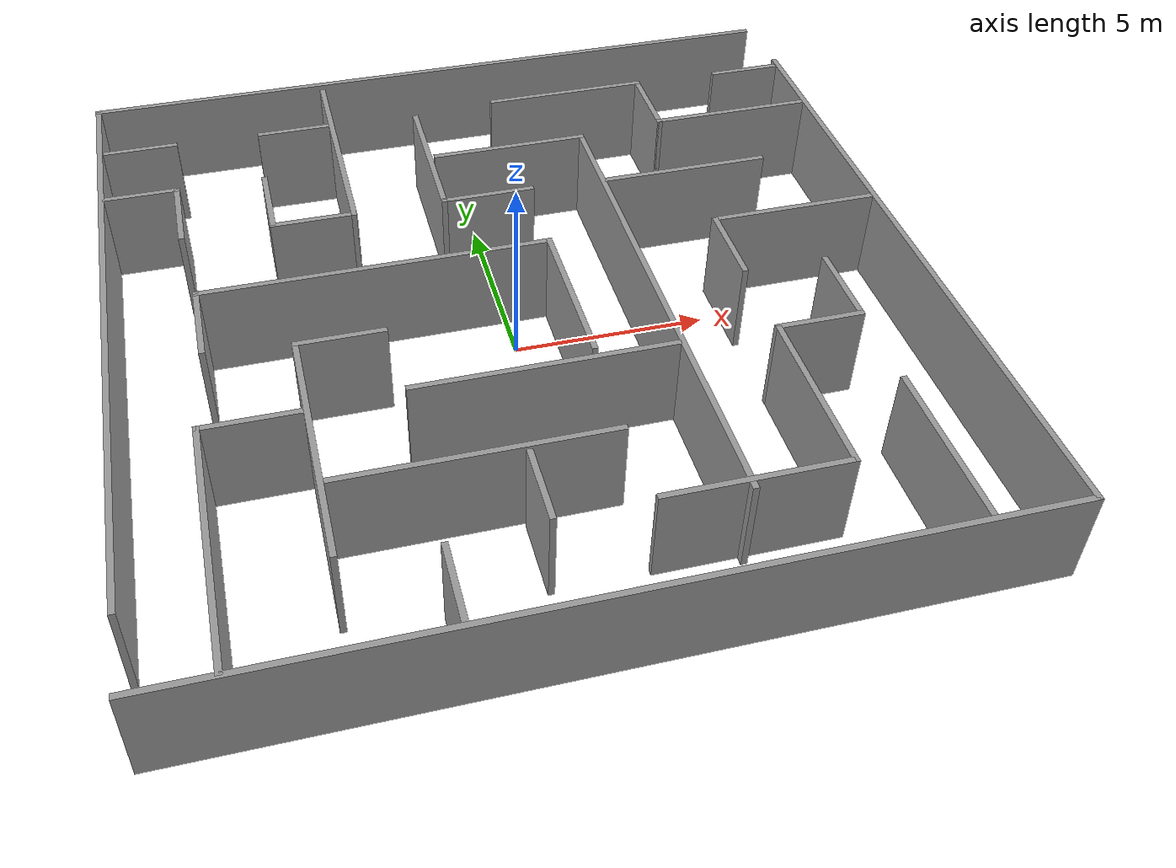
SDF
<?xml version='1.0'?>
<sdf version='1.6'>
  <model name='migong'>
    <pose frame=''>0.063661 0.067032 0 0 -0 0</pose>
    <link name='Wall_1'>
      <collision name='Wall_1_Collision'>
        <geometry>
          <box>
            <size>18 0.15 2.5</size>
          </box>
        </geometry>
        <pose frame=''>0 0 1.25 0 -0 0</pose>
      </collision>
      <visual name='Wall_1_Visual'>
        <pose frame=''>0 0 1.25 0 -0 0</pose>
        <geometry>
          <box>
            <size>18 0.15 2.5</size>
          </box>
        </geometry>
        <material>
          <script>
            <uri>file://media/materials/scripts/gazebo.material</uri>
            <name>Gazebo/Grey</name>
          </script>
          <ambient>1 1 1 1</ambient>
        </material>
      </visual>
      <pose frame=''>9.925 -0.95549 0 0 0 -1.5708</pose>
    </link>
    <link name='Wall_10'>
      <collision name='Wall_10_Collision'>
        <geometry>
          <box>
            <size>18 0.15 2.5</size>
          </box>
        </geometry>
        <pose frame=''>0 0 1.25 0 -0 0</pose>
      </collision>
      <visual name='Wall_10_Visual'>
        <pose frame=''>0 0 1.25 0 -0 0</pose>
        <geometry>
          <box>
            <size>18 0.15 2.5</size>
          </box>
        </geometry>
        <material>
          <script>
            <uri>file://media/materials/scripts/gazebo.material</uri>
            <name>Gazebo/Grey</name>
          </script>
          <ambient>1 1 1 1</ambient>
        </material>
      </visual>
      <pose frame=''>-9.92272 0.95549 0 0 -0 1.5708</pose>
    </link>
    <link name='Wall_11'>
      <collision name='Wall_11_Collision'>
        <geometry>
          <box>
            <size>19.75 0.15 2.5</size>
          </box>
        </geometry>
        <pose frame=''>0 0 1.25 0 -0 0</pose>
      </collision>
      <visual name='Wall_11_Visual'>
        <pose frame=''>0 0 1.25 0 -0 0</pose>
        <geometry>
          <box>
            <size>19.75 0.15 2.5</size>
          </box>
        </geometry>
        <material>
          <script>
            <uri>file://media/materials/scripts/gazebo.material</uri>
            <name>Gazebo/Grey</name>
          </script>
          <ambient>1 1 1 1</ambient>
        </material>
      </visual>
      <pose frame=''>-0.122722 9.88049 0 0 -0 0</pose>
    </link>
    <link name='Wall_13'>
      <collision name='Wall_13_Collision'>
        <geometry>
          <box>
            <size>2 0.15 2.5</size>
          </box>
        </geometry>
        <pose frame=''>0 0 1.25 0 -0 0</pose>
      </collision>
      <visual name='Wall_13_Visual'>
        <pose frame=''>0 0 1.25 0 -0 0</pose>
        <geometry>
          <box>
            <size>2 0.15 2.5</size>
          </box>
        </geometry>
        <material>
          <script>
            <uri>file://media/materials/scripts/gazebo.material</uri>
            <name>Gazebo/Grey</name>
          </script>
          <ambient>1 1 1 1</ambient>
        </material>
      </visual>
      <pose frame=''>-8.83566 7.72225 0 0 -0 0</pose>
    </link>
    <link name='Wall_15'>
      <collision name='Wall_15_Collision'>
        <geometry>
          <box>
            <size>2 0.15 2.5</size>
          </box>
        </geometry>
        <pose frame=''>0 0 1.25 0 -0 0</pose>
      </collision>
      <visual name='Wall_15_Visual'>
        <pose frame=''>0 0 1.25 0 -0 0</pose>
        <geometry>
          <box>
            <size>2 0.15 2.5</size>
          </box>
        </geometry>
        <material>
          <script>
            <uri>file://media/materials/scripts/gazebo.material</uri>
            <name>Gazebo/Grey</name>
          </script>
          <ambient>1 1 1 1</ambient>
        </material>
      </visual>
      <pose frame=''>-4.61421 7.66949 0 0 -0 0</pose>
    </link>
    <link name='Wall_19'>
      <collision name='Wall_19_Collision'>
        <geometry>
          <box>
            <size>2 0.15 2.5</size>
          </box>
        </geometry>
        <pose frame=''>0 0 1.25 0 -0 0</pose>
      </collision>
      <visual name='Wall_19_Visual'>
        <pose frame=''>0 0 1.25 0 -0 0</pose>
        <geometry>
          <box>
            <size>2 0.15 2.5</size>
          </box>
        </geometry>
        <material>
          <script>
            <uri>file://media/materials/scripts/gazebo.material</uri>
            <name>Gazebo/Grey</name>
          </script>
          <ambient>1 1 1 1</ambient>
        </material>
      </visual>
      <pose frame=''>-8.88842 5.55876 0 0 -0 0</pose>
    </link>
    <link name='Wall_2'>
      <collision name='Wall_2_Collision'>
        <geometry>
          <box>
            <size>20 0.15 2.5</size>
          </box>
        </geometry>
        <pose frame=''>0 0 1.25 0 -0 0</pose>
      </collision>
      <visual name='Wall_2_Visual'>
        <pose frame=''>0 0 1.25 0 -0 0</pose>
        <geometry>
          <box>
            <size>20 0.15 2.5</size>
          </box>
        </geometry>
        <material>
          <script>
            <uri>file://media/materials/scripts/gazebo.material</uri>
            <name>Gazebo/Grey</name>
          </script>
          <ambient>1 1 1 1</ambient>
        </material>
      </visual>
      <pose frame=''>0 -9.88049 0 0 -0 3.14159</pose>
    </link>
    <link name='Wall_20'>
      <collision name='Wall_20_Collision'>
        <geometry>
          <box>
            <size>2.25 0.15 2.5</size>
          </box>
        </geometry>
        <pose frame=''>0 0 1.25 0 -0 0</pose>
      </collision>
      <visual name='Wall_20_Visual'>
        <pose frame=''>0 0 1.25 0 -0 0</pose>
        <geometry>
          <box>
            <size>2.25 0.15 2.5</size>
          </box>
        </geometry>
        <material>
          <script>
            <uri>file://media/materials/scripts/gazebo.material</uri>
            <name>Gazebo/Grey</name>
          </script>
          <ambient>1 1 1 1</ambient>
        </material>
      </visual>
      <pose frame=''>-7.96342 4.50876 0 0 0 -1.5708</pose>
    </link>
    <link name='Wall_26'>
      <collision name='Wall_26_Collision'>
        <geometry>
          <box>
            <size>2.25 0.15 2.5</size>
          </box>
        </geometry>
        <pose frame=''>0 0 1.25 0 -0 0</pose>
      </collision>
      <visual name='Wall_26_Visual'>
        <pose frame=''>0 0 1.25 0 -0 0</pose>
        <geometry>
          <box>
            <size>2.25 0.15 2.5</size>
          </box>
        </geometry>
        <material>
          <script>
            <uri>file://media/materials/scripts/gazebo.material</uri>
            <name>Gazebo/Grey</name>
          </script>
          <ambient>1 1 1 1</ambient>
        </material>
      </visual>
      <pose frame=''>-5.64474 4.45599 0 0 0 -1.5708</pose>
    </link>
    <link name='Wall_27'>
      <collision name='Wall_27_Collision'>
        <geometry>
          <box>
            <size>2.25 0.15 2.5</size>
          </box>
        </geometry>
        <pose frame=''>0 0 1.25 0 -0 0</pose>
      </collision>
      <visual name='Wall_27_Visual'>
        <pose frame=''>0 0 1.25 0 -0 0</pose>
        <geometry>
          <box>
            <size>2.25 0.15 2.5</size>
          </box>
        </geometry>
        <material>
          <script>
            <uri>file://media/materials/scripts/gazebo.material</uri>
            <name>Gazebo/Grey</name>
          </script>
          <ambient>1 1 1 1</ambient>
        </material>
      </visual>
      <pose frame=''>-4.59474 3.40599 0 0 -0 0</pose>
    </link>
    <link name='Wall_28'>
      <collision name='Wall_28_Collision'>
        <geometry>
          <box>
            <size>6.25 0.15 2.5</size>
          </box>
        </geometry>
        <pose frame=''>0 0 1.25 0 -0 0</pose>
      </collision>
      <visual name='Wall_28_Visual'>
        <pose frame=''>0 0 1.25 0 -0 0</pose>
        <geometry>
          <box>
            <size>6.25 0.15 2.5</size>
          </box>
        </geometry>
        <material>
          <script>
            <uri>file://media/materials/scripts/gazebo.material</uri>
            <name>Gazebo/Grey</name>
          </script>
          <ambient>1 1 1 1</ambient>
        </material>
      </visual>
      <pose frame=''>-3.54474 6.45599 0 0 -0 1.5708</pose>
    </link>
    <link name='Wall_30'>
      <collision name='Wall_30_Collision'>
        <geometry>
          <box>
            <size>2 0.15 2.5</size>
          </box>
        </geometry>
        <pose frame=''>0 0 1.25 0 -0 0</pose>
      </collision>
      <visual name='Wall_30_Visual'>
        <pose frame=''>0 0 1.25 0 -0 0</pose>
        <geometry>
          <box>
            <size>2 0.15 2.5</size>
          </box>
        </geometry>
        <material>
          <script>
            <uri>file://media/materials/scripts/gazebo.material</uri>
            <name>Gazebo/Grey</name>
          </script>
          <ambient>1 1 1 1</ambient>
        </material>
      </visual>
      <pose frame=''>8.84167 7.72225 0 0 -0 0</pose>
    </link>
    <link name='Wall_32'>
      <collision name='Wall_32_Collision'>
        <geometry>
          <box>
            <size>4.5 0.15 2.5</size>
          </box>
        </geometry>
        <pose frame=''>0 0 1.25 0 -0 0</pose>
      </collision>
      <visual name='Wall_32_Visual'>
        <pose frame=''>0 0 1.25 0 -0 0</pose>
        <geometry>
          <box>
            <size>4.5 0.15 2.5</size>
          </box>
        </geometry>
        <material>
          <script>
            <uri>file://media/materials/scripts/gazebo.material</uri>
            <name>Gazebo/Grey</name>
          </script>
          <ambient>1 1 1 1</ambient>
        </material>
      </visual>
      <pose frame=''>3.33735 7.77502 0 0 -0 0</pose>
    </link>
    <link name='Wall_33'>
      <collision name='Wall_33_Collision'>
        <geometry>
          <box>
            <size>2.25 0.15 2.5</size>
          </box>
        </geometry>
        <pose frame=''>0 0 1.25 0 -0 0</pose>
      </collision>
      <visual name='Wall_33_Visual'>
        <pose frame=''>0 0 1.25 0 -0 0</pose>
        <geometry>
          <box>
            <size>2.25 0.15 2.5</size>
          </box>
        </geometry>
        <material>
          <script>
            <uri>file://media/materials/scripts/gazebo.material</uri>
            <name>Gazebo/Grey</name>
          </script>
          <ambient>1 1 1 1</ambient>
        </material>
      </visual>
      <pose frame=''>5.51235 6.72502 0 0 0 -1.5708</pose>
    </link>
    <link name='Wall_34'>
      <collision name='Wall_34_Collision'>
        <geometry>
          <box>
            <size>4.5 0.15 2.5</size>
          </box>
        </geometry>
        <pose frame=''>0 0 1.25 0 -0 0</pose>
      </collision>
      <visual name='Wall_34_Visual'>
        <pose frame=''>0 0 1.25 0 -0 0</pose>
        <geometry>
          <box>
            <size>4.5 0.15 2.5</size>
          </box>
        </geometry>
        <material>
          <script>
            <uri>file://media/materials/scripts/gazebo.material</uri>
            <name>Gazebo/Grey</name>
          </script>
          <ambient>1 1 1 1</ambient>
        </material>
      </visual>
      <pose frame=''>7.68735 5.67502 0 0 -0 0</pose>
    </link>
    <link name='Wall_36'>
      <collision name='Wall_36_Collision'>
        <geometry>
          <box>
            <size>4.25 0.15 2.5</size>
          </box>
        </geometry>
        <pose frame=''>0 0 1.25 0 -0 0</pose>
      </collision>
      <visual name='Wall_36_Visual'>
        <pose frame=''>0 0 1.25 0 -0 0</pose>
        <geometry>
          <box>
            <size>4.25 0.15 2.5</size>
          </box>
        </geometry>
        <material>
          <script>
            <uri>file://media/materials/scripts/gazebo.material</uri>
            <name>Gazebo/Grey</name>
          </script>
          <ambient>1 1 1 1</ambient>
        </material>
      </visual>
      <pose frame=''>-1.15945 5.46118 0 0 0 -1.5708</pose>
    </link>
    <link name='Wall_37'>
      <collision name='Wall_37_Collision'>
        <geometry>
          <box>
            <size>2.5 0.15 2.5</size>
          </box>
        </geometry>
        <pose frame=''>0 0 1.25 0 -0 0</pose>
      </collision>
      <visual name='Wall_37_Visual'>
        <pose frame=''>0 0 1.25 0 -0 0</pose>
        <geometry>
          <box>
            <size>2.5 0.15 2.5</size>
          </box>
        </geometry>
        <material>
          <script>
            <uri>file://media/materials/scripts/gazebo.material</uri>
            <name>Gazebo/Grey</name>
          </script>
          <ambient>1 1 1 1</ambient>
        </material>
      </visual>
      <pose frame=''>0.015551 3.41118 0 0 -0 0</pose>
    </link>
    <link name='Wall_39'>
      <collision name='Wall_39_Collision'>
        <geometry>
          <box>
            <size>4.25 0.15 2.5</size>
          </box>
        </geometry>
        <pose frame=''>0 0 1.25 0 -0 0</pose>
      </collision>
      <visual name='Wall_39_Visual'>
        <pose frame=''>0 0 1.25 0 -0 0</pose>
        <geometry>
          <box>
            <size>4.25 0.15 2.5</size>
          </box>
        </geometry>
        <material>
          <script>
            <uri>file://media/materials/scripts/gazebo.material</uri>
            <name>Gazebo/Grey</name>
          </script>
          <ambient>1 1 1 1</ambient>
        </material>
      </visual>
      <pose frame=''>1.10162 5.45322 0 0 -0 0</pose>
    </link>
    <link name='Wall_40'>
      <collision name='Wall_40_Collision'>
        <geometry>
          <box>
            <size>13.5 0.15 2.5</size>
          </box>
        </geometry>
        <pose frame=''>0 0 1.25 0 -0 0</pose>
      </collision>
      <visual name='Wall_40_Visual'>
        <pose frame=''>0 0 1.25 0 -0 0</pose>
        <geometry>
          <box>
            <size>13.5 0.15 2.5</size>
          </box>
        </geometry>
        <material>
          <script>
            <uri>file://media/materials/scripts/gazebo.material</uri>
            <name>Gazebo/Grey</name>
          </script>
          <ambient>1 1 1 1</ambient>
        </material>
      </visual>
      <pose frame=''>3.15162 -1.22178 0 0 0 -1.5708</pose>
    </link>
    <link name='Wall_42'>
      <collision name='Wall_42_Collision'>
        <geometry>
          <box>
            <size>4.5 0.15 2.5</size>
          </box>
        </geometry>
        <pose frame=''>0 0 1.25 0 -0 0</pose>
      </collision>
      <visual name='Wall_42_Visual'>
        <pose frame=''>0 0 1.25 0 -0 0</pose>
        <geometry>
          <box>
            <size>4.5 0.15 2.5</size>
          </box>
        </geometry>
        <material>
          <script>
            <uri>file://media/materials/scripts/gazebo.material</uri>
            <name>Gazebo/Grey</name>
          </script>
          <ambient>1 1 1 1</ambient>
        </material>
      </visual>
      <pose frame=''>5.44808 3.28973 0 0 -0 0</pose>
    </link>
    <link name='Wall_44'>
      <collision name='Wall_44_Collision'>
        <geometry>
          <box>
            <size>2.25 0.15 2.5</size>
          </box>
        </geometry>
        <pose frame=''>0 0 1.25 0 -0 0</pose>
      </collision>
      <visual name='Wall_44_Visual'>
        <pose frame=''>0 0 1.25 0 -0 0</pose>
        <geometry>
          <box>
            <size>2.25 0.15 2.5</size>
          </box>
        </geometry>
        <material>
          <script>
            <uri>file://media/materials/scripts/gazebo.material</uri>
            <name>Gazebo/Grey</name>
          </script>
          <ambient>1 1 1 1</ambient>
        </material>
      </visual>
      <pose frame=''>5.48934 -0.092793 0 0 -0 1.5708</pose>
    </link>
    <link name='Wall_45'>
      <collision name='Wall_45_Collision'>
        <geometry>
          <box>
            <size>4.5 0.15 2.5</size>
          </box>
        </geometry>
        <pose frame=''>0 0 1.25 0 -0 0</pose>
      </collision>
      <visual name='Wall_45_Visual'>
        <pose frame=''>0 0 1.25 0 -0 0</pose>
        <geometry>
          <box>
            <size>4.5 0.15 2.5</size>
          </box>
        </geometry>
        <material>
          <script>
            <uri>file://media/materials/scripts/gazebo.material</uri>
            <name>Gazebo/Grey</name>
          </script>
          <ambient>1 1 1 1</ambient>
        </material>
      </visual>
      <pose frame=''>7.66434 0.957207 0 0 -0 0</pose>
    </link>
    <link name='Wall_47'>
      <collision name='Wall_47_Collision'>
        <geometry>
          <box>
            <size>2.25 0.15 2.5</size>
          </box>
        </geometry>
        <pose frame=''>0 0 1.25 0 -0 0</pose>
      </collision>
      <visual name='Wall_47_Visual'>
        <pose frame=''>0 0 1.25 0 -0 0</pose>
        <geometry>
          <box>
            <size>2.25 0.15 2.5</size>
          </box>
        </geometry>
        <material>
          <script>
            <uri>file://media/materials/scripts/gazebo.material</uri>
            <name>Gazebo/Grey</name>
          </script>
          <ambient>1 1 1 1</ambient>
        </material>
      </visual>
      <pose frame=''>7.60006 -2.29833 0 0 0 -1.5708</pose>
    </link>
    <link name='Wall_48'>
      <collision name='Wall_48_Collision'>
        <geometry>
          <box>
            <size>2.25 0.15 2.5</size>
          </box>
        </geometry>
        <pose frame=''>0 0 1.25 0 -0 0</pose>
      </collision>
      <visual name='Wall_48_Visual'>
        <pose frame=''>0 0 1.25 0 -0 0</pose>
        <geometry>
          <box>
            <size>2.25 0.15 2.5</size>
          </box>
        </geometry>
        <material>
          <script>
            <uri>file://media/materials/scripts/gazebo.material</uri>
            <name>Gazebo/Grey</name>
          </script>
          <ambient>1 1 1 1</ambient>
        </material>
      </visual>
      <pose frame=''>6.55006 -3.34833 0 0 -0 3.14159</pose>
    </link>
    <link name='Wall_49'>
      <collision name='Wall_49_Collision'>
        <geometry>
          <box>
            <size>4.5 0.15 2.5</size>
          </box>
        </geometry>
        <pose frame=''>0 0 1.25 0 -0 0</pose>
      </collision>
      <visual name='Wall_49_Visual'>
        <pose frame=''>0 0 1.25 0 -0 0</pose>
        <geometry>
          <box>
            <size>4.5 0.15 2.5</size>
          </box>
        </geometry>
        <material>
          <script>
            <uri>file://media/materials/scripts/gazebo.material</uri>
            <name>Gazebo/Grey</name>
          </script>
          <ambient>1 1 1 1</ambient>
        </material>
      </visual>
      <pose frame=''>5.50006 -5.52333 0 0 0 -1.5708</pose>
    </link>
    <link name='Wall_50'>
      <collision name='Wall_50_Collision'>
        <geometry>
          <box>
            <size>4.5 0.15 2.5</size>
          </box>
        </geometry>
        <pose frame=''>0 0 1.25 0 -0 0</pose>
      </collision>
      <visual name='Wall_50_Visual'>
        <pose frame=''>0 0 1.25 0 -0 0</pose>
        <geometry>
          <box>
            <size>4.5 0.15 2.5</size>
          </box>
        </geometry>
        <material>
          <script>
            <uri>file://media/materials/scripts/gazebo.material</uri>
            <name>Gazebo/Grey</name>
          </script>
          <ambient>1 1 1 1</ambient>
        </material>
      </visual>
      <pose frame=''>3.32506 -7.69833 0 0 -0 3.14159</pose>
    </link>
    <link name='Wall_52'>
      <collision name='Wall_52_Collision'>
        <geometry>
          <box>
            <size>4.25 0.15 2.5</size>
          </box>
        </geometry>
        <pose frame=''>0 0 1.25 0 -0 0</pose>
      </collision>
      <visual name='Wall_52_Visual'>
        <pose frame=''>0 0 1.25 0 -0 0</pose>
        <geometry>
          <box>
            <size>4.25 0.15 2.5</size>
          </box>
        </geometry>
        <material>
          <script>
            <uri>file://media/materials/scripts/gazebo.material</uri>
            <name>Gazebo/Grey</name>
          </script>
          <ambient>1 1 1 1</ambient>
        </material>
      </visual>
      <pose frame=''>7.60006 -7.73085 0 0 0 -1.5708</pose>
    </link>
    <link name='Wall_54'>
      <collision name='Wall_54_Collision'>
        <geometry>
          <box>
            <size>2.25 0.15 2.5</size>
          </box>
        </geometry>
        <pose frame=''>0 0 1.25 0 -0 0</pose>
      </collision>
      <visual name='Wall_54_Visual'>
        <pose frame=''>0 0 1.25 0 -0 0</pose>
        <geometry>
          <box>
            <size>2.25 0.15 2.5</size>
          </box>
        </geometry>
        <material>
          <script>
            <uri>file://media/materials/scripts/gazebo.material</uri>
            <name>Gazebo/Grey</name>
          </script>
          <ambient>1 1 1 1</ambient>
        </material>
      </visual>
      <pose frame=''>-7.75547 0.065512 0 0 -0 1.5708</pose>
    </link>
    <link name='Wall_55'>
      <collision name='Wall_55_Collision'>
        <geometry>
          <box>
            <size>9 0.15 2.5</size>
          </box>
        </geometry>
        <pose frame=''>0 0 1.25 0 -0 0</pose>
      </collision>
      <visual name='Wall_55_Visual'>
        <pose frame=''>0 0 1.25 0 -0 0</pose>
        <geometry>
          <box>
            <size>9 0.15 2.5</size>
          </box>
        </geometry>
        <material>
          <script>
            <uri>file://media/materials/scripts/gazebo.material</uri>
            <name>Gazebo/Grey</name>
          </script>
          <ambient>1 1 1 1</ambient>
        </material>
      </visual>
      <pose frame=''>-3.33047 1.11551 0 0 -0 0</pose>
    </link>
    <link name='Wall_56'>
      <collision name='Wall_56_Collision'>
        <geometry>
          <box>
            <size>4.25 0.15 2.5</size>
          </box>
        </geometry>
        <pose frame=''>0 0 1.25 0 -0 0</pose>
      </collision>
      <visual name='Wall_56_Visual'>
        <pose frame=''>0 0 1.25 0 -0 0</pose>
        <geometry>
          <box>
            <size>4.25 0.15 2.5</size>
          </box>
        </geometry>
        <material>
          <script>
            <uri>file://media/materials/scripts/gazebo.material</uri>
            <name>Gazebo/Grey</name>
          </script>
          <ambient>1 1 1 1</ambient>
        </material>
      </visual>
      <pose frame=''>1.09453 -0.934488 0 0 0 -1.5708</pose>
    </link>
    <link name='Wall_58'>
      <collision name='Wall_58_Collision'>
        <geometry>
          <box>
            <size>6.5 0.15 2.5</size>
          </box>
        </geometry>
        <pose frame=''>0 0 1.25 0 -0 0</pose>
      </collision>
      <visual name='Wall_58_Visual'>
        <pose frame=''>0 0 1.25 0 -0 0</pose>
        <geometry>
          <box>
            <size>6.5 0.15 2.5</size>
          </box>
        </geometry>
        <material>
          <script>
            <uri>file://media/materials/scripts/gazebo.material</uri>
            <name>Gazebo/Grey</name>
          </script>
          <ambient>1 1 1 1</ambient>
        </material>
      </visual>
      <pose frame=''>-0.147943 -3.30629 0 0 -0 0</pose>
    </link>
    <link name='Wall_60'>
      <collision name='Wall_60_Collision'>
        <geometry>
          <box>
            <size>2.25 0.15 2.5</size>
          </box>
        </geometry>
        <pose frame=''>0 0 1.25 0 -0 0</pose>
      </collision>
      <visual name='Wall_60_Visual'>
        <pose frame=''>0 0 1.25 0 -0 0</pose>
        <geometry>
          <box>
            <size>2.25 0.15 2.5</size>
          </box>
        </geometry>
        <material>
          <script>
            <uri>file://media/materials/scripts/gazebo.material</uri>
            <name>Gazebo/Grey</name>
          </script>
          <ambient>1 1 1 1</ambient>
        </material>
      </visual>
      <pose frame=''>-4.58401 -1.24833 0 0 -0 3.14159</pose>
    </link>
    <link name='Wall_61'>
      <collision name='Wall_61_Collision'>
        <geometry>
          <box>
            <size>6.5 0.15 2.5</size>
          </box>
        </geometry>
        <pose frame=''>0 0 1.25 0 -0 0</pose>
      </collision>
      <visual name='Wall_61_Visual'>
        <pose frame=''>0 0 1.25 0 -0 0</pose>
        <geometry>
          <box>
            <size>6.5 0.15 2.5</size>
          </box>
        </geometry>
        <material>
          <script>
            <uri>file://media/materials/scripts/gazebo.material</uri>
            <name>Gazebo/Grey</name>
          </script>
          <ambient>1 1 1 1</ambient>
        </material>
      </visual>
      <pose frame=''>-5.63401 -4.42333 0 0 0 -1.5708</pose>
    </link>
    <link name='Wall_63'>
      <collision name='Wall_63_Collision'>
        <geometry>
          <box>
            <size>6.75 0.15 2.5</size>
          </box>
        </geometry>
        <pose frame=''>0 0 1.25 0 -0 0</pose>
      </collision>
      <visual name='Wall_63_Visual'>
        <pose frame=''>0 0 1.25 0 -0 0</pose>
        <geometry>
          <box>
            <size>6.75 0.15 2.5</size>
          </box>
        </geometry>
        <material>
          <script>
            <uri>file://media/materials/scripts/gazebo.material</uri>
            <name>Gazebo/Grey</name>
          </script>
          <ambient>1 1 1 1</ambient>
        </material>
      </visual>
      <pose frame=''>-2.29197 -5.62808 0 0 -0 0</pose>
    </link>
    <link name='Wall_65'>
      <collision name='Wall_65_Collision'>
        <geometry>
          <box>
            <size>2 0.15 2.5</size>
          </box>
        </geometry>
        <pose frame=''>0 0 1.25 0 -0 0</pose>
      </collision>
      <visual name='Wall_65_Visual'>
        <pose frame=''>0 0 1.25 0 -0 0</pose>
        <geometry>
          <box>
            <size>2 0.15 2.5</size>
          </box>
        </geometry>
        <material>
          <script>
            <uri>file://media/materials/scripts/gazebo.material</uri>
            <name>Gazebo/Grey</name>
          </script>
          <ambient>1 1 1 1</ambient>
        </material>
      </visual>
      <pose frame=''>-1.15945 -6.76416 0 0 0 -1.5708</pose>
    </link>
    <link name='Wall_67'>
      <collision name='Wall_67_Collision'>
        <geometry>
          <box>
            <size>2.5 0.15 2.5</size>
          </box>
        </geometry>
        <pose frame=''>0 0 1.25 0 -0 0</pose>
      </collision>
      <visual name='Wall_67_Visual'>
        <pose frame=''>0 0 1.25 0 -0 0</pose>
        <geometry>
          <box>
            <size>2.5 0.15 2.5</size>
          </box>
        </geometry>
        <material>
          <script>
            <uri>file://media/materials/scripts/gazebo.material</uri>
            <name>Gazebo/Grey</name>
          </script>
          <ambient>1 1 1 1</ambient>
        </material>
      </visual>
      <pose frame=''>-6.87251 -3.46459 0 0 -0 3.14159</pose>
    </link>
    <link name='Wall_68'>
      <collision name='Wall_68_Collision'>
        <geometry>
          <box>
            <size>6.5 0.15 2.5</size>
          </box>
        </geometry>
        <pose frame=''>0 0 1.25 0 -0 0</pose>
      </collision>
      <visual name='Wall_68_Visual'>
        <pose frame=''>0 0 1.25 0 -0 0</pose>
        <geometry>
          <box>
            <size>6.5 0.15 2.5</size>
          </box>
        </geometry>
        <material>
          <script>
            <uri>file://media/materials/scripts/gazebo.material</uri>
            <name>Gazebo/Grey</name>
          </script>
          <ambient>1 1 1 1</ambient>
        </material>
      </visual>
      <pose frame=''>-8.04751 -6.63959 0 0 0 -1.5708</pose>
    </link>
    <link name='Wall_70'>
      <collision name='Wall_70_Collision'>
        <geometry>
          <box>
            <size>2 0.15 2.5</size>
          </box>
        </geometry>
        <pose frame=''>0 0 1.25 0 -0 0</pose>
      </collision>
      <visual name='Wall_70_Visual'>
        <pose frame=''>0 0 1.25 0 -0 0</pose>
        <geometry>
          <box>
            <size>2 0.15 2.5</size>
          </box>
        </geometry>
        <material>
          <script>
            <uri>file://media/materials/scripts/gazebo.material</uri>
            <name>Gazebo/Grey</name>
          </script>
          <ambient>1 1 1 1</ambient>
        </material>
      </visual>
      <pose frame=''>-3.42848 -8.82212 0 0 0 -1.5708</pose>
    </link>
    <static>1</static>
  </model>
</sdf>
